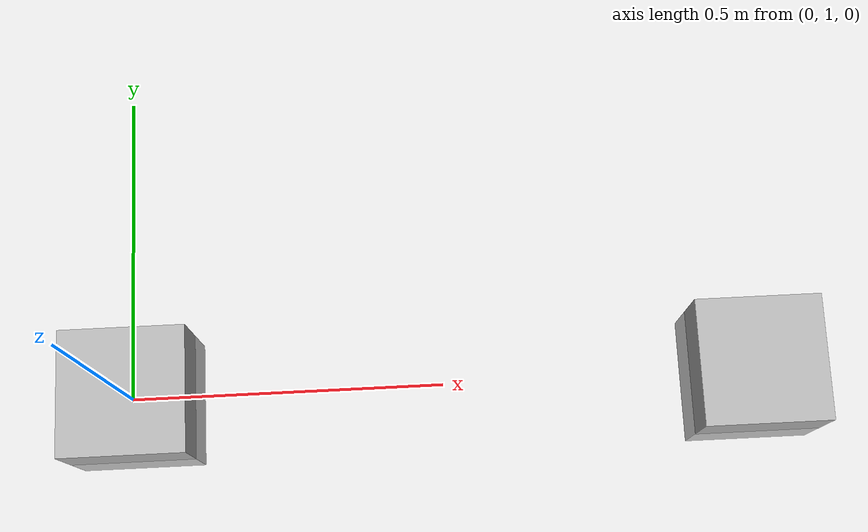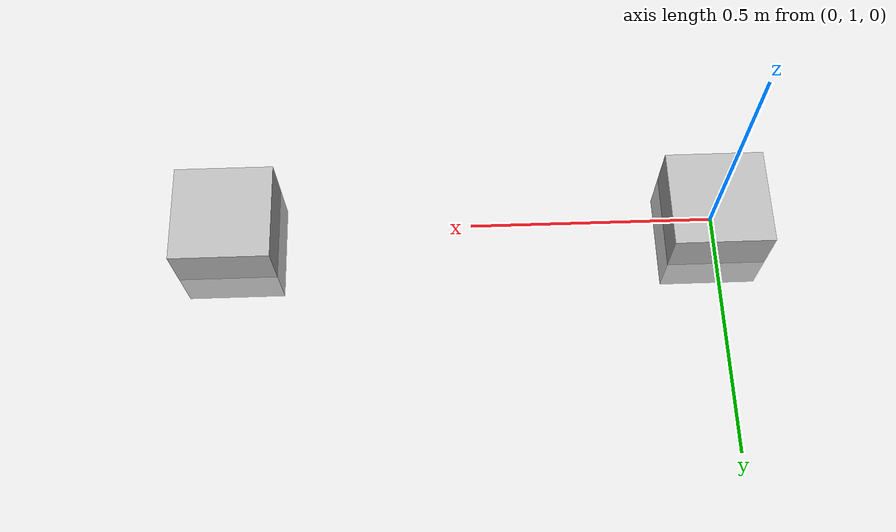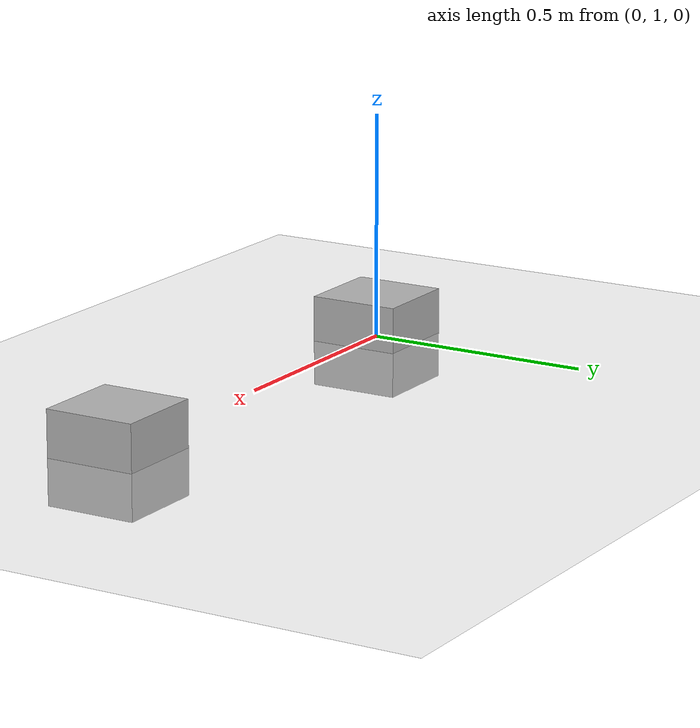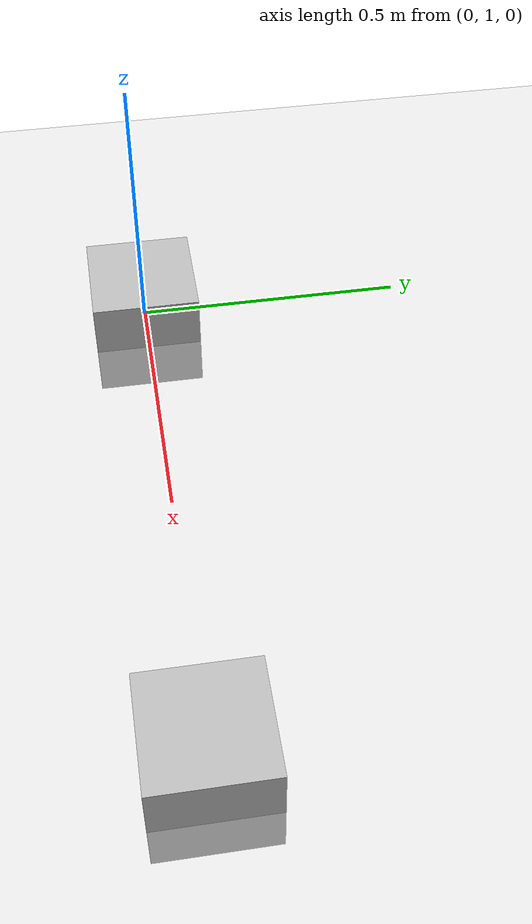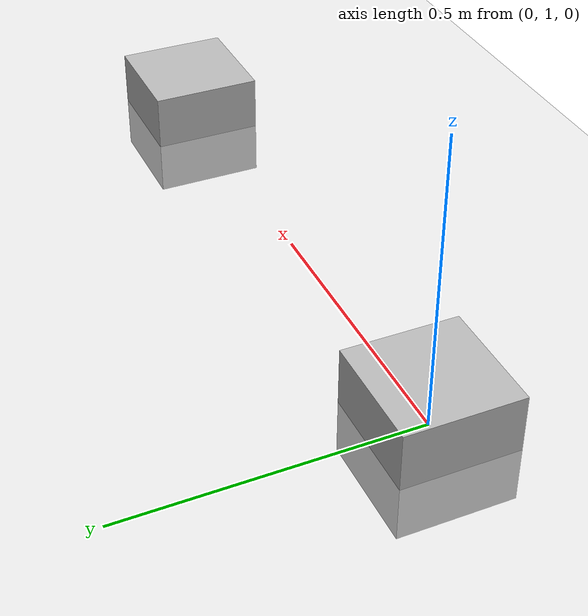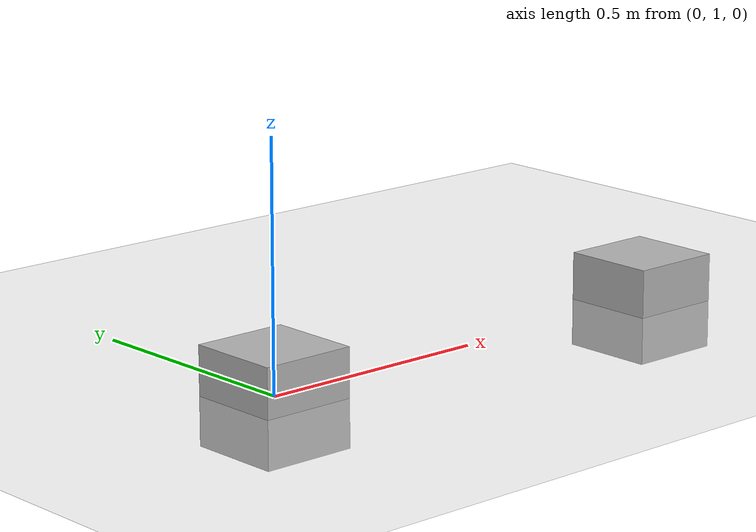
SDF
<sdf version="1.4">
 <world name="default">
  <scene><ambient>0.9 0.9 0.9 1</ambient><background>0.5 0.5 0.5 0.5</background><shadows>true</shadows></scene>
  <include><uri>model://ground_plane</uri></include>
  <include><uri>model://sun</uri></include>
  <physics type="ode">
   <real_time_update_rate>1000.0</real_time_update_rate>
   <max_step_size>0.001</max_step_size>
   <real_time_factor>1</real_time_factor>
   <ode>
    <solver>
     <type>quick</type>
     <iters>150</iters>
     <precon_iters>0</precon_iters>
     <sor>1.400000</sor>
     <use_dynamic_moi_rescaling>1</use_dynamic_moi_rescaling>
    </solver>
    <constraints>
     <cfm>0.00001</cfm>
     <erp>0.2</erp>
     <contact_max_correcting_vel>2000.000000</contact_max_correcting_vel>
     <contact_surface_layer>0.01000</contact_surface_layer>
    </constraints>
   </ode>
  </physics>
  <model name="box_model">
   <static>false</static>
   <pose>0 1 0 0 0 0</pose>
   <link name="box_link">
    <gravity>0</gravity>
    <collision name="collision">
     <geometry><box><size>.2 .2 .2</size></box></geometry>
     <surface><contact><collide_without_contact>true</collide_without_contact></contact></surface>
    </collision>
    <visual name="visual"><geometry><box><size>.2 .2 .2</size></box></geometry></visual>
   </link>
   <plugin name="box_plug" filename="libgazebo_tutorials.so">
    <target>3 2 0.1</target>
    <target_weight>1.15</target_weight>
    <obstacle_weight>1.8</obstacle_weight>
    <ignore_obstacles>
     <model>ground_plane</model>
     <model>turtlebot3_burger</model>
     <model>box_model_2</model>
     <model>box_model_3</model>
     <model>box_model_4</model>
     <model>box_model_5</model>
     <model>box_model_6</model>
     <model>box_model_7</model>
     <model>box_model_8</model>
     <model>box_model_9</model>
     <model>box_model_10</model>
     <model>box_model_11</model>
     <model>box_model_12</model>
     <model>box_model_13</model>
     <model>box_model_14</model>
     <model>box_model_15</model>
     <model>box_model_16</model>
     <model>box_model_17</model>
     <model>box_model_18</model>
     <model>box_model_19</model>
     <model>box_model_20</model>
     <model>box_model_21</model>
     <model>box_model_22</model>
     <model>box_model_23</model>
     <model>box_model_24</model>
     <model>box_model_25</model>
     <model>box_model_26</model>
     <model>box_model_27</model>
     <model>box_model_28</model>
     <model>box_model_29</model>
     <model>box_model_30</model>
    </ignore_obstacles>
   </plugin>
  </model>
  <model name="box_model_2">
   <static>false</static>
   <pose>1 1 0 0 0 0</pose>
   <link name="box_link_2">
    <gravity>0</gravity>
    <collision name="collision">
     <geometry><box><size>.2 .2 .2</size></box></geometry>
     <surface><contact><collide_without_contact>true</collide_without_contact></contact></surface>
    </collision>
    <visual name="visual"><geometry><box><size>.2 .2 .2</size></box></geometry></visual>
   </link>
   <plugin name="box_2_plug" filename="libgazebo_tutorials.so">
    <target>3 2 0.1</target>
    <target_weight>1.15</target_weight>
    <obstacle_weight>1.8</obstacle_weight>
    <ignore_obstacles>
     <model>ground_plane</model>
     <model>turtlebot3_burger</model>
     <model>box_model</model>
     <model>box_model_3</model>
     <model>box_model_4</model>
     <model>box_model_5</model>
     <model>box_model_6</model>
     <model>box_model_7</model>
     <model>box_model_8</model>
     <model>box_model_9</model>
     <model>box_model_10</model>
     <model>box_model_11</model>
     <model>box_model_12</model>
     <model>box_model_13</model>
     <model>box_model_14</model>
     <model>box_model_15</model>
     <model>box_model_16</model>
     <model>box_model_17</model>
     <model>box_model_18</model>
     <model>box_model_19</model>
     <model>box_model_20</model>
     <model>box_model_21</model>
     <model>box_model_22</model>
     <model>box_model_23</model>
     <model>box_model_24</model>
     <model>box_model_25</model>
     <model>box_model_26</model>
     <model>box_model_27</model>
     <model>box_model_28</model>
     <model>box_model_29</model>
     <model>box_model_30</model>
    </ignore_obstacles>
   </plugin>
  </model>
  <model name="box_model_3">
   <static>false</static>
   <pose>1 1 0 0 0 0</pose>
   <link name="box_link_3">
    <gravity>0</gravity>
    <collision name="collision">
     <geometry><box><size>.2 .2 .2</size></box></geometry>
     <surface><contact><collide_without_contact>true</collide_without_contact></contact></surface>
    </collision>
    <visual name="visual"><geometry><box><size>.2 .2 .2</size></box></geometry></visual>
   </link>
   <plugin name="box_3_plug" filename="libgazebo_tutorials.so">
    <target>3 2 0.1</target>
    <target_weight>1.15</target_weight>
    <obstacle_weight>1</obstacle_weight>
    <ignore_obstacles>
     <model>ground_plane</model>
     <model>turtlebot3_burger</model>
     <model>box_model</model>
     <model>box_model_2</model>
     <model>box_model_4</model>
     <model>box_model_5</model>
     <model>box_model_6</model>
     <model>box_model_7</model>
     <model>box_model_8</model>
     <model>box_model_9</model>
     <model>box_model_10</model>
     <model>box_model_11</model>
     <model>box_model_12</model>
     <model>box_model_13</model>
     <model>box_model_14</model>
     <model>box_model_15</model>
     <model>box_model_16</model>
     <model>box_model_17</model>
     <model>box_model_18</model>
     <model>box_model_19</model>
     <model>box_model_20</model>
     <model>box_model_21</model>
     <model>box_model_22</model>
     <model>box_model_23</model>
     <model>box_model_24</model>
     <model>box_model_25</model>
     <model>box_model_26</model>
     <model>box_model_27</model>
     <model>box_model_28</model>
     <model>box_model_29</model>
     <model>box_model_30</model>
    </ignore_obstacles>
   </plugin>
  </model>
  <model name="box_model_4">
   <static>false</static>
   <pose>1 1 0 0 0 0</pose>
   <link name="box_link_4">
    <gravity>0</gravity>
    <collision name="collision">
     <geometry><box><size>.2 .2 .2</size></box></geometry>
     <surface><contact><collide_without_contact>true</collide_without_contact></contact></surface>
    </collision>
    <visual name="visual"><geometry><box><size>.2 .2 .2</size></box></geometry></visual>
   </link>
   <plugin name="box_4_plug" filename="libgazebo_tutorials.so">
    <target>3 2 0.1</target>
    <target_weight>1.15</target_weight>
    <obstacle_weight>1.8</obstacle_weight>
    <ignore_obstacles>
     <model>ground_plane</model>
     <model>turtlebot3_burger</model>
     <model>box_model</model>
     <model>box_model_2</model>
     <model>box_model_3</model>
     <model>box_model_5</model>
     <model>box_model_6</model>
     <model>box_model_7</model>
     <model>box_model_8</model>
     <model>box_model_9</model>
     <model>box_model_10</model>
     <model>box_model_11</model>
     <model>box_model_12</model>
     <model>box_model_13</model>
     <model>box_model_14</model>
     <model>box_model_15</model>
     <model>box_model_16</model>
     <model>box_model_17</model>
     <model>box_model_18</model>
     <model>box_model_19</model>
     <model>box_model_20</model>
     <model>box_model_21</model>
     <model>box_model_22</model>
     <model>box_model_23</model>
     <model>box_model_24</model>
     <model>box_model_25</model>
     <model>box_model_26</model>
     <model>box_model_27</model>
     <model>box_model_28</model>
     <model>box_model_29</model>
     <model>box_model_30</model>
    </ignore_obstacles>
   </plugin>
  </model>
  <model name="box_model_5">
   <static>false</static>
   <pose>1 1 0 0 0 0</pose>
   <link name="box_link_5">
    <gravity>0</gravity>
    <collision name="collision">
     <geometry><box><size>.2 .2 .2</size></box></geometry>
     <surface><contact><collide_without_contact>true</collide_without_contact></contact></surface>
    </collision>
    <visual name="visual"><geometry><box><size>.2 .2 .2</size></box></geometry></visual>
   </link>
   <plugin name="box_5_plug" filename="libgazebo_tutorials.so">
    <target>3 2 0.1</target>
    <target_weight>1.15</target_weight>
    <obstacle_weight>1.8</obstacle_weight>
    <ignore_obstacles>
     <model>ground_plane</model>
     <model>turtlebot3_burger</model>
     <model>box_model</model>
     <model>box_model_2</model>
     <model>box_model_3</model>
     <model>box_model_4</model>
     <model>box_model_6</model>
     <model>box_model_7</model>
     <model>box_model_8</model>
     <model>box_model_9</model>
     <model>box_model_10</model>
     <model>box_model_11</model>
     <model>box_model_12</model>
     <model>box_model_13</model>
     <model>box_model_14</model>
     <model>box_model_15</model>
     <model>box_model_16</model>
     <model>box_model_17</model>
     <model>box_model_18</model>
     <model>box_model_19</model>
     <model>box_model_20</model>
     <model>box_model_21</model>
     <model>box_model_22</model>
     <model>box_model_23</model>
     <model>box_model_24</model>
     <model>box_model_25</model>
     <model>box_model_26</model>
     <model>box_model_27</model>
     <model>box_model_28</model>
     <model>box_model_29</model>
     <model>box_model_30</model>
    </ignore_obstacles>
   </plugin>
  </model>
  <model name="box_model_6">
   <static>false</static>
   <pose>1 1 0 0 0 0</pose>
   <link name="box_link_6">
    <gravity>0</gravity>
    <collision name="collision">
     <geometry><box><size>.2 .2 .2</size></box></geometry>
     <surface><contact><collide_without_contact>true</collide_without_contact></contact></surface>
    </collision>
    <visual name="visual"><geometry><box><size>.2 .2 .2</size></box></geometry></visual>
   </link>
   <plugin name="box_6_plug" filename="libgazebo_tutorials.so">
    <target>3 2 0.1</target>
    <target_weight>1.15</target_weight>
    <obstacle_weight>1.8</obstacle_weight>
    <ignore_obstacles>
     <model>ground_plane</model>
     <model>turtlebot3_burger</model>
     <model>box_model</model>
     <model>box_model_2</model>
     <model>box_model_3</model>
     <model>box_model_4</model>
     <model>box_model_5</model>
     <model>box_model_7</model>
     <model>box_model_8</model>
     <model>box_model_9</model>
     <model>box_model_10</model>
     <model>box_model_11</model>
     <model>box_model_12</model>
     <model>box_model_13</model>
     <model>box_model_14</model>
     <model>box_model_15</model>
     <model>box_model_16</model>
     <model>box_model_17</model>
     <model>box_model_18</model>
     <model>box_model_19</model>
     <model>box_model_20</model>
     <model>box_model_21</model>
     <model>box_model_22</model>
     <model>box_model_23</model>
     <model>box_model_24</model>
     <model>box_model_25</model>
     <model>box_model_26</model>
     <model>box_model_27</model>
     <model>box_model_28</model>
     <model>box_model_29</model>
     <model>box_model_30</model>
    </ignore_obstacles>
   </plugin>
  </model>
  <model name="box_model_7">
   <static>false</static>
   <pose>1 1 0 0 0 0</pose>
   <link name="box_link_7">
    <gravity>0</gravity>
    <collision name="collision">
     <geometry><box><size>.2 .2 .2</size></box></geometry>
     <surface><contact><collide_without_contact>true</collide_without_contact></contact></surface>
    </collision>
    <visual name="visual"><geometry><box><size>.2 .2 .2</size></box></geometry></visual>
   </link>
   <plugin name="box_7_plug" filename="libgazebo_tutorials.so">
    <target>3 2 0.1</target>
    <target_weight>1.15</target_weight>
    <obstacle_weight>1.8</obstacle_weight>
    <ignore_obstacles>
     <model>ground_plane</model>
     <model>turtlebot3_burger</model>
     <model>box_model</model>
     <model>box_model_2</model>
     <model>box_model_3</model>
     <model>box_model_4</model>
     <model>box_model_5</model>
     <model>box_model_6</model>
     <model>box_model_8</model>
     <model>box_model_9</model>
     <model>box_model_10</model>
     <model>box_model_11</model>
     <model>box_model_12</model>
     <model>box_model_13</model>
     <model>box_model_14</model>
     <model>box_model_15</model>
     <model>box_model_16</model>
     <model>box_model_17</model>
     <model>box_model_18</model>
     <model>box_model_19</model>
     <model>box_model_20</model>
     <model>box_model_21</model>
     <model>box_model_22</model>
     <model>box_model_23</model>
     <model>box_model_24</model>
     <model>box_model_25</model>
     <model>box_model_26</model>
     <model>box_model_27</model>
     <model>box_model_28</model>
     <model>box_model_29</model>
     <model>box_model_30</model>
    </ignore_obstacles>
   </plugin>
  </model>
  <plugin name="gazebo_tutorials" filename="libgazebo_tutorials.so"/>
 </world>
</sdf>
